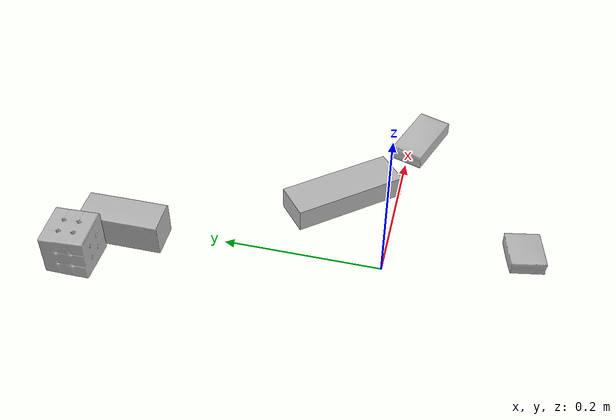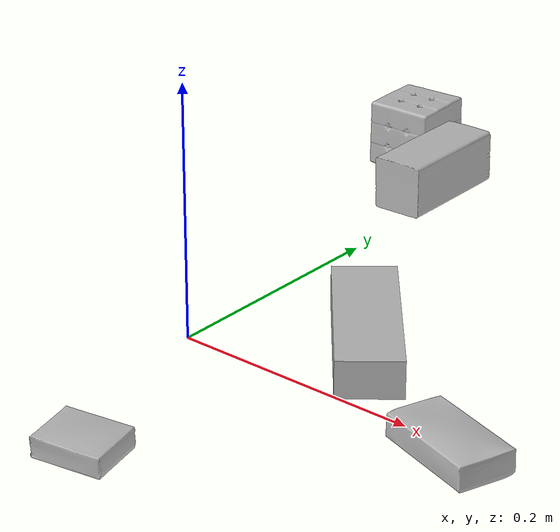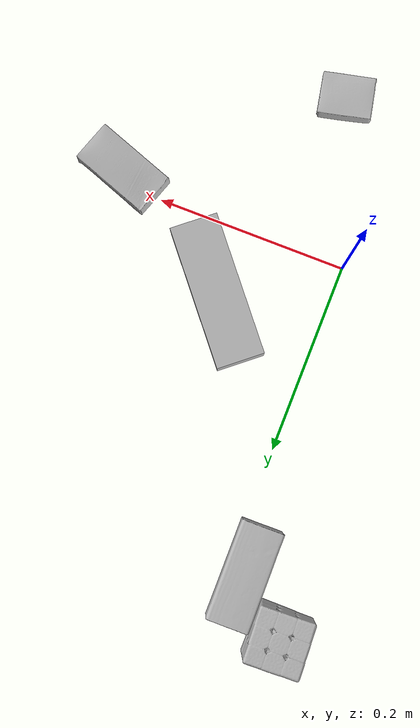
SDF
<sdf version="1.4">
  <world name="default">
    <light name="light1" type="point">
      <pose>0 0 1 0 0 0</pose>
      <diffuse>3 3 3 1</diffuse>
      <specular>3 3 3 1</specular>
    </light>
    <light name="light2" type="point">
      <pose>0 0.5 2 0 0 0</pose>
      <diffuse>1 1 1 1</diffuse>
      <specular>1 1 1 1</specular>
    </light>
    <light name="light3" type="point">
      <pose>0 0.5 2 0 0 0</pose>
      <diffuse>3 3 3 1</diffuse>
      <specular>3 3 3 1</specular>
    </light>
    <scene>
      <ambient>0.7 0.7 0.7</ambient>
    </scene>
    <model name="box1">
      <link name="link_box1">
        <collision name="default">
          <geometry>
            <mesh>
              <uri>model://wood_block/collision_meshes/collision.obj</uri>
              <scale>0.5 0.5 0.5</scale>
            </mesh>
          </geometry>
          <surface>
            <friction>
              <ode>
                <mu>0.5</mu>
                <mu2>0.5</mu2>
              </ode>
            </friction>
          <contact>
        <ode>
            <max_vel>0</max_vel>
            <min_depth>0.0001</min_depth>
            <kp>1e8</kp>
        </ode>
    </contact></surface>
        </collision>
        <visual name="default">
          <geometry>
            <mesh>
              <uri>model://wood_block/visual_meshes/visual.dae</uri>
              <scale>0.5 0.5 0.5</scale>
            </mesh>
          </geometry>
        </visual>
        <inertial>
          <mass>0.21249504387378693</mass>
          <pose>-2.906657528001233e-06 -0.00028540470520965755 0.00013204290007706732 -0.05220867383734612 -0.005192696375656893 -0.006861378651330705</pose>
          <inertia>
            <ixx>7.108762e-05</ixx>
            <iyy>0.00022456584</iyy>
            <izz>0.00022372584</izz>
            <ixy>0</ixy>
            <ixz>0</ixz>
            <iyz>0</iyz>
          </inertia>
        </inertial>
      </link>
      <pose>-0.01748352311551571 0.32491955161094666 0.022527489811182022 -0.01584672752797196 -0.0004006216715654421 1.5807361273776968</pose>
    </model>
    <model name="box2">
      <link name="link_box2">
        <collision name="default">
          <geometry>
            <mesh>
              <uri>model://sugar_box/collision_meshes/collision.obj</uri>
              <scale>0.5 0.5 0.5</scale>
            </mesh>
          </geometry>
          <surface>
            <friction>
              <ode>
                <mu>0.5</mu>
                <mu2>0.5</mu2>
              </ode>
            </friction>
          <contact>
        <ode>
            <max_vel>0</max_vel>
            <min_depth>0.0001</min_depth>
            <kp>1e8</kp>
        </ode>
    </contact></surface>
        </collision>
        <visual name="default">
          <geometry>
            <mesh>
              <uri>model://sugar_box/visual_meshes/visual.dae</uri>
              <scale>0.5 0.5 0.5</scale>
            </mesh>
          </geometry>
        </visual>
        <inertial>
          <mass>0.11089310050010681</mass>
          <pose>0.0005171863595023751 1.924554817378521e-05 -0.00018182402709499002 -0.0004046262999979174 0.001050663638672674 0.002615379254561693</pose>
          <inertia>
            <ixx>2.3098954e-05</ixx>
            <iyy>7.4660566e-05</iyy>
            <izz>8.9377616e-05</izz>
            <ixy>0</ixy>
            <ixz>0</ixz>
            <iyz>0</iyz>
          </inertia>
        </inertial>
      </link>
      <pose>0.24647799134254456 -0.013353527523577213 0.011399301700294018 0.0007751777638211149 -0.023433193043252126 -0.3435406362340339</pose>
    </model>
    <model name="box3">
      <link name="link_box3">
        <collision name="default">
          <geometry>
            <mesh>
              <uri>model://jenga/collision_meshes/collision.obj</uri>
              <scale>1.0 1.0 1.0</scale>
            </mesh>
          </geometry>
          <surface>
            <friction>
              <ode>
                <mu>0.5</mu>
                <mu2>0.5</mu2>
              </ode>
            </friction>
          <contact>
        <ode>
            <max_vel>0</max_vel>
            <min_depth>0.0001</min_depth>
            <kp>1e8</kp>
        </ode>
    </contact></surface>
        </collision>
        <visual name="default">
          <geometry>
            <mesh>
              <uri>model://jenga/visual_meshes/visual.dae</uri>
              <scale>1.0 1.0 1.0</scale>
            </mesh>
          </geometry>
        </visual>
        <inertial>
          <mass>0.163609579205513</mass>
          <pose>-2.502855807051674e-07 -0.0001025000965455547 -4.0923401684267446e-05 0.0 -7.34215461761844e-07 0.0</pose>
          <inertia>
            <ixx>4.527474e-05</ixx>
            <iyy>0.00030678045</iyy>
            <izz>0.0003275142</izz>
            <ixy>0</ixy>
            <ixz>0</ixz>
            <iyz>0</iyz>
          </inertia>
        </inertial>
      </link>
      <pose>0.11035823076963425 0.07135555148124695 0.015000002458691597 9.322915194830847e-10 -3.5807951301835935e-09 2.2643045875609853</pose>
    </model>
    <model name="box4">
      <link name="link_box4">
        <collision name="default">
          <geometry>
            <mesh>
              <uri>model://rubiks_cube/collision_meshes/collision.obj</uri>
              <scale>1.0 1.0 1.0</scale>
            </mesh>
          </geometry>
          <surface>
            <friction>
              <ode>
                <mu>0.5</mu>
                <mu2>0.5</mu2>
              </ode>
            </friction>
          <contact>
        <ode>
            <max_vel>0</max_vel>
            <min_depth>0.0001</min_depth>
            <kp>1e8</kp>
        </ode>
    </contact></surface>
        </collision>
        <visual name="default">
          <geometry>
            <mesh>
              <uri>model://rubiks_cube/visual_meshes/visual.dae</uri>
              <scale>1.0 1.0 1.0</scale>
            </mesh>
          </geometry>
        </visual>
        <inertial>
          <mass>0.25540637969970703</mass>
          <pose>2.6721041649580002e-05 5.2569666877388954e-05 -7.264316082000732e-06 -0.054671713185757496 -0.09814043055608018 -0.034455401135126476</pose>
          <inertia>
            <ixx>0.00014112917</ixx>
            <iyy>0.000140471</iyy>
            <izz>0.00014229867</izz>
            <ixy>0</ixy>
            <ixz>0</ixz>
            <iyz>0</iyz>
          </inertia>
        </inertial>
      </link>
      <pose>-0.07031910866498947 0.37054428458213806 0.028679000213742256 -1.440073471274802e-06 4.4848377777208286e-07 -1.53838762460347</pose>
    </model>
    <model name="box5">
      <link name="link_box5">
        <collision name="default">
          <geometry>
            <mesh>
              <uri>model://pudding_box/collision_meshes/collision.obj</uri>
              <scale>0.5 0.5 0.5</scale>
            </mesh>
          </geometry>
          <surface>
            <friction>
              <ode>
                <mu>0.5</mu>
                <mu2>0.5</mu2>
              </ode>
            </friction>
          <contact>
        <ode>
            <max_vel>0</max_vel>
            <min_depth>0.0001</min_depth>
            <kp>1e8</kp>
        </ode>
    </contact></surface>
        </collision>
        <visual name="default">
          <geometry>
            <mesh>
              <uri>model://pudding_box/visual_meshes/visual.dae</uri>
              <scale>0.5 0.5 0.5</scale>
            </mesh>
          </geometry>
        </visual>
        <inertial>
          <mass>0.04848850890994072</mass>
          <pose>0.00024474109522998333 0.000403394311433658 -0.0002594413817860186 0.0052131017882315455 -0.0066037973363940366 0.020079830752013892</pose>
          <inertia>
            <ixx>1.370344e-05</ixx>
            <iyy>9.219772e-06</iyy>
            <izz>2.023671e-05</izz>
            <ixy>0</ixy>
            <ixz>0</ixz>
            <iyz>0</iyz>
          </inertia>
        </inertial>
      </link>
      <pose>0.05909339338541031 -0.16775155067443848 0.009862900711596012 0.022348475708840725 -0.011391755556739819 1.7792264340993083</pose>
    </model>
  <physics type="ode">
      <max_contacts>50</max_contacts>
      <ode>
        <solver>
          <type>quick</type>
          <iters>75</iters>
        </solver>
        <constraints>
          <contact_max_correcting_vel>0</contact_max_correcting_vel>
          <contact_surface_layer>0</contact_surface_layer>
        </constraints>
      </ode>
    </physics></world>
</sdf>
